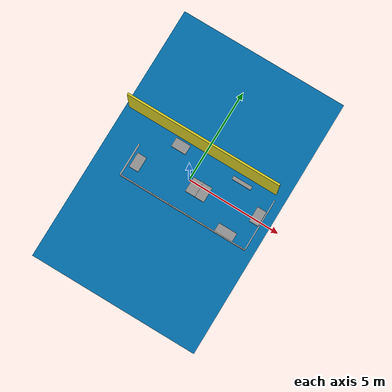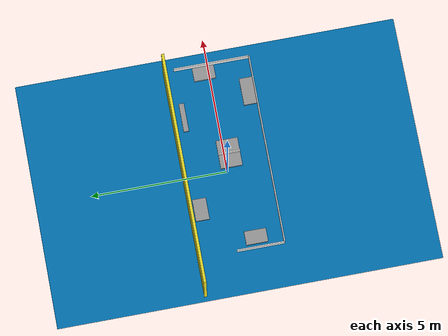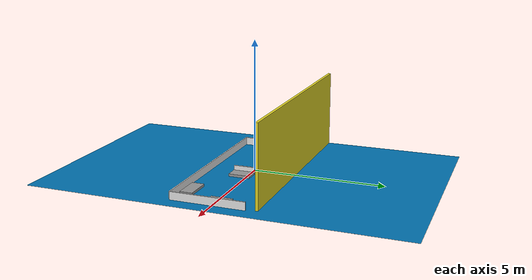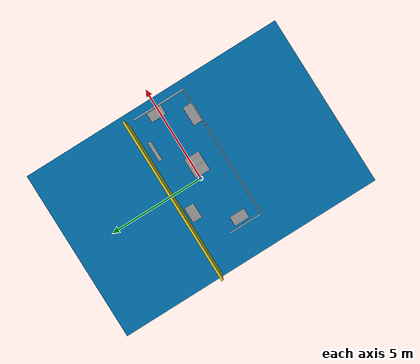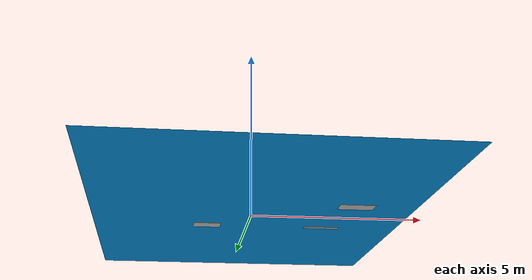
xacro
<robot name="rockin-2014">
  <link name="wall_1">
    <inertial>
      <origin xyz="0 2.0 0" />
      <mass value="10.0" />
      <inertia  ixx="1.0" ixy="0.0"  ixz="0.0"  iyy="1.0"  iyz="0.0"  izz="1.0" />
    </inertial>
    <visual>
      <origin xyz="0 2.0 0"/>
      <geometry>
        <box size="8.32 0.1 3.0" />
      </geometry>
    </visual>
    <collision>
      <origin xyz="0 2.0 0"/>
      <geometry>
      <box size="8.32 0.1 3.0" />
      </geometry>
    </collision>
  </link>

  <joint name="join1" type="fixed">
    <origin xyz="4.25 +0.25 -1.35" rpy="0 0 0"/>
    <parent link="wall_1"/>
    <child link="wall_2"/>
  </joint>

    <link name="wall_2">
    <inertial>
      <origin xyz="0 0 0" />
      <mass value="10.0" />
      <inertia  ixx="1.0" ixy="0.0"  ixz="0.0"  iyy="1.0"  iyz="0.0"  izz="1.0" />
    </inertial>
    <visual>
      <origin xyz="0 0 0"/>
      <geometry>
        <box size="0.04 -2.78 0.3" />
      </geometry>
    </visual>
    <collision>
      <origin xyz="0 0 0"/>
      <geometry>
        <box size="0.04 -2.78 0.3" />
      </geometry>
    </collision>
  </link>

  <joint name="join2" type="fixed">
    <origin xyz="-3.5 -1.39 0" rpy="0 0 0"/>
    <parent link="wall_2"/>
    <child link="wall_3"/>
  </joint>

  <link name="wall_3">
    <inertial>
      <origin xyz="0 0 0" />
      <mass value="10.0" />
      <inertia  ixx="1.0" ixy="0.0"  ixz="0.0"  iyy="1.0"  iyz="0.0"  izz="1.0" />
    </inertial>
    <visual>
      <origin xyz="0 0 0"/>
      <geometry>
        <box size="7 0.04 0.3" />
      </geometry>
    </visual>
    <collision>
      <origin xyz="0 0 0"/>
      <geometry>
      <box size="7 0.04 0.3" />
      </geometry>
    </collision>
  </link>

  <joint name="join10" type="fixed">
    <origin xyz="-0.30 0.33 0.0" rpy="0 0 0"/>
    <parent link="wall_2"/>
    <child link="platform_1"/>
  </joint>

  <link name="platform_1">
    <inertial>
      <origin xyz="0 0.0 -0.075" />
      <mass value="10.0" />
      <inertia  ixx="1.0" ixy="0.0"  ixz="0.0"  iyy="1.0"  iyz="0.0"  izz="1.0" />
    </inertial>
    <visual>
      <origin xyz="0 0.0 -0.075"/>
      <geometry>
        <box size="0.5 0.8 0.099" />
      </geometry>
    </visual>
    <collision>
      <origin xyz="0 0.0 -0.075" />
      <geometry>
      <box size="0.5 0.8 0.099" />
      </geometry>
    </collision>
  </link>

  <joint name="join3" type="fixed">
    <origin xyz="+0.1 +0.56 0" rpy="0 0 0"/>
    <parent link="wall_3"/>
    <child link="wall_4"/>
  </joint>

  <link name="wall_4">
    <inertial>
      <origin xyz="0 0.8 0" />
      <mass value="10.0" />
      <inertia  ixx="1.0" ixy="0.0"  ixz="0.0"  iyy="1.0"  iyz="0.0"  izz="1.0" />
    </inertial>
    <visual>
      <origin xyz="0 0.8 0"/>
      <geometry>
        <box size="0.04 0.8 0.3" />
      </geometry>
    </visual>
    <collision>
      <origin xyz="0 0.8 0"/>
      <geometry>
      <box size="0.1 0.8 0.3" />
      </geometry>
    </collision>
  </link>

  <joint name="join4" type="fixed">
    <origin xyz="+2.46 -0.155 -1.5" rpy="0 0 0"/>
    <parent link="wall_1"/>
    <child link="roller_band"/>
  </joint>

  <link name="roller_band">
    <inertial>
      <origin xyz="0 1.75 0" />
      <mass value="10.0" />
      <inertia  ixx="1.0" ixy="0.0"  ixz="0.0"  iyy="1.0"  iyz="0.0"  izz="1.0" />
    </inertial>
    <visual>
      <origin xyz="0 1.75 0"/>
      <geometry>
        <box size="1.05 0.19 0.11" />
      </geometry>
    </visual>
    <collision>
      <origin xyz="0 1.75 0" />
      <geometry>
      <box size="1.05 0.19 0.11" />
      </geometry>
    </collision>
  </link>

----------
  <joint name="join5" type="fixed">
    <origin xyz="-3.5 +0.07 0" rpy="0 0 0"/>
    <parent link="wall_3"/>
    <child link="wall_5"/>
  </joint>

  <link name="wall_5">
    <inertial>
      <origin xyz="0 0.8 0" />
      <mass value="10.0" />
      <inertia  ixx="1.0" ixy="0.0"  ixz="0.0"  iyy="1.0"  iyz="0.0"  izz="1.0" />
    </inertial>
    <visual>
      <origin xyz="0 0.8 0"/>
      <geometry>
        <box size="0.04 1.74 0.3" />
      </geometry>
    </visual>
    <collision>
      <origin xyz="0 0.8 0"/>
      <geometry>
      <box size="0.04 1.74 0.3" />
      </geometry>
    </collision>
  </link>

  <joint name="join8" type="fixed">
    <origin xyz="0.40 0.90 0.0" rpy="0 0 0"/>
    <parent link="wall_5"/>
    <child link="platform_2"/>
  </joint>

  <link name="platform_2">
    <inertial>
      <origin xyz="0 0.0 -0.075" />
      <mass value="10.0" />
      <inertia  ixx="1.0" ixy="0.0"  ixz="0.0"  iyy="1.0"  iyz="0.0"  izz="1.0" />
    </inertial>
    <visual>
      <origin xyz="0 0.0 -0.075"/>
      <geometry>
        <box size="0.5 0.8 0.099" />
      </geometry>
    </visual>
    <collision>
      <origin xyz="0 0.0 -0.075" />
      <geometry>
      <box size="0.5 0.8 0.099" />
      </geometry>
    </collision>
  </link>

  <joint name="join6" type="fixed">
    <origin xyz="-1 -0.15 -1.5" rpy="0 0 0"/>
    <parent link="wall_1"/>
    <child link="platform_3"/>
  </joint>

  <link name="platform_3">
    <inertial>
      <origin xyz="0 1.75 0" />
      <mass value="10.0" />
      <inertia  ixx="1.0" ixy="0.0"  ixz="0.0"  iyy="1.0"  iyz="0.0"  izz="1.0" />
    </inertial>
    <visual>
      <origin xyz="0 1.75 0"/>
      <geometry>
        <box size="0.80 0.50 0.099" />
      </geometry>
    </visual>
    <collision>
      <origin xyz="0 1.75 0" />
      <geometry>
        <box size="0.80 0.50 0.099" />
      </geometry>
    </collision>
  </link>

  <joint name="join7" type="fixed">
    <origin xyz="0.27 0.8 0.0" rpy="0 0 0"/>
    <parent link="wall_4"/>
    <child link="platform_4"/>
  </joint>

  <link name="platform_4">
    <inertial>
      <origin xyz="0 0.0 -0.075" />
      <mass value="10.0" />
      <inertia  ixx="1.0" ixy="0.0"  ixz="0.0"  iyy="1.0"  iyz="0.0"  izz="1.0" />
    </inertial>
    <visual>
      <origin xyz="0 0.0 -0.075"/>
      <geometry>
        <box size="0.5 0.8 0.099" />
      </geometry>
    </visual>
    <collision>
      <origin xyz="0 0.0 -0.075" />
      <geometry>
      <box size="0.5 0.8 0.099" />
      </geometry>
    </collision>
  </link>

  <joint name="join11" type="fixed">
    <origin xyz="-0.27 0.8 0.0" rpy="0 0 0"/>
    <parent link="wall_4"/>
    <child link="platform_5"/>
  </joint>

  <link name="platform_5">
    <inertial>
      <origin xyz="0 0.0 -0.075" />
      <mass value="10.0" />
      <inertia  ixx="1.0" ixy="0.0"  ixz="0.0"  iyy="1.0"  iyz="0.0"  izz="1.0" />
    </inertial>
    <visual>
      <origin xyz="0 0.0 -0.075"/>
      <geometry>
        <box size="0.5 0.8 0.099" />
      </geometry>
    </visual>
    <collision>
      <origin xyz="0 0.0 -0.075" />
      <geometry>
      <box size="0.5 0.8 0.099" />
      </geometry>
    </collision>
  </link>

  <joint name="join9" type="fixed">
    <origin xyz="+0.97 +0.0 -0.15" rpy="0 0 0"/>
    <parent link="wall_3"/>
    <child link="platform_6"/>
  </joint>

  <link name="platform_6">
    <inertial>
      <origin xyz="1.3 0.25 0" />
      <mass value="10.0" />
      <inertia  ixx="1.0" ixy="0.0"  ixz="0.0"  iyy="1.0"  iyz="0.0"  izz="1.0" />
    </inertial>
    <visual>
      <origin xyz="1.3 0.25 0"/>
      <geometry>
        <box size="1.00 0.50 0.099" />
      </geometry>
    </visual>
    <collision>
      <origin xyz="1.3 0.25 0" />
      <geometry>
        <box size="1.00 0.50 0.099" />
      </geometry>
    </collision>
  </link>

  <joint name="podium0" type="fixed">
    <origin xyz="-0.2 -0.4 +1.54"/>
    <parent link="podium"/>
    <child link="wall_1"/>
  </joint>

  <link name="podium">
    <visual>
      <origin xyz="0 0.0 0.0" rpy="3.14159265 3.14159265 1.57296325"/>
      <geometry>
        <box size="14.05 9.05 -0.0001" />
      </geometry>
    </visual>
  </link>

  <gazebo reference="wall_1">
  <material>Gazebo/Yellow</material>
  <selfCollide>true</selfCollide>
  </gazebo>
  <gazebo reference="wall_2">
  <material>Gazebo/White</material>
  <selfCollide>true</selfCollide>
  </gazebo>
  <gazebo reference="wall_3">
  <material>Gazebo/White</material>
  <selfCollide>true</selfCollide>
  </gazebo>
  <gazebo reference="wall_4">
  <material>Gazebo/White</material>
  <selfCollide>true</selfCollide>
  </gazebo>
  <gazebo reference="wall_5">
  <material>Gazebo/White</material>
  <selfCollide>true</selfCollide>
  </gazebo>
  <gazebo reference="roller_band">
  <material>Gazebo/Grey</material>
  <selfCollide>true</selfCollide>
  </gazebo>
  <gazebo reference="platform_1">
  <material>Gazebo/Grey</material>
  <selfCollide>true</selfCollide>
  </gazebo>
  <gazebo reference="platform_2">
  <material>Gazebo/Grey</material>
  <selfCollide>true</selfCollide>
  </gazebo>
  <gazebo reference="platform_3">
  <material>Gazebo/Grey</material>
  <selfCollide>true</selfCollide>
  </gazebo>
  <gazebo reference="platform_4">
  <material>Gazebo/Grey</material>
  <selfCollide>true</selfCollide>
  </gazebo>
  <gazebo reference="platform_5">
  <material>Gazebo/Grey</material>
  <selfCollide>true</selfCollide>
  </gazebo>
  <gazebo reference="platform_6">
  <material>Gazebo/Grey</material>
  <selfCollide>true</selfCollide>
  </gazebo>
  <gazebo reference="podium">
  <material>youbot/RoCKinCamp2014</material>
  <selfCollide>false</selfCollide>
  </gazebo>

</robot>
